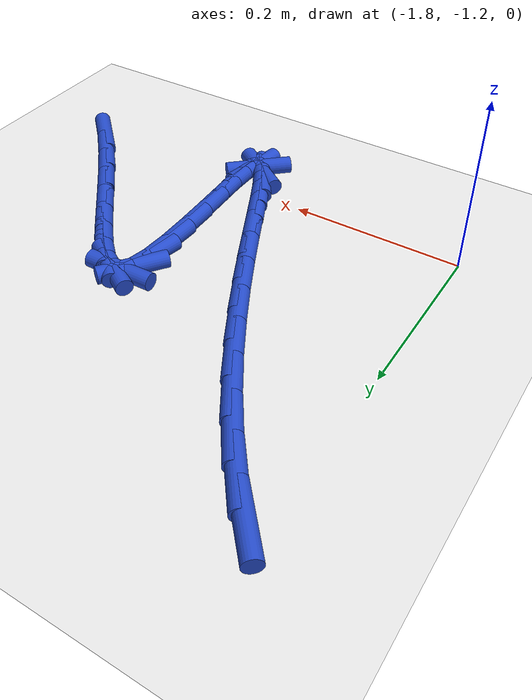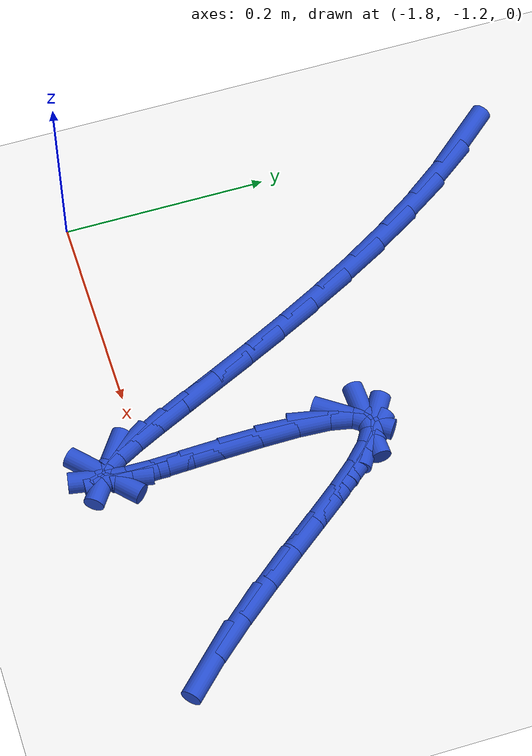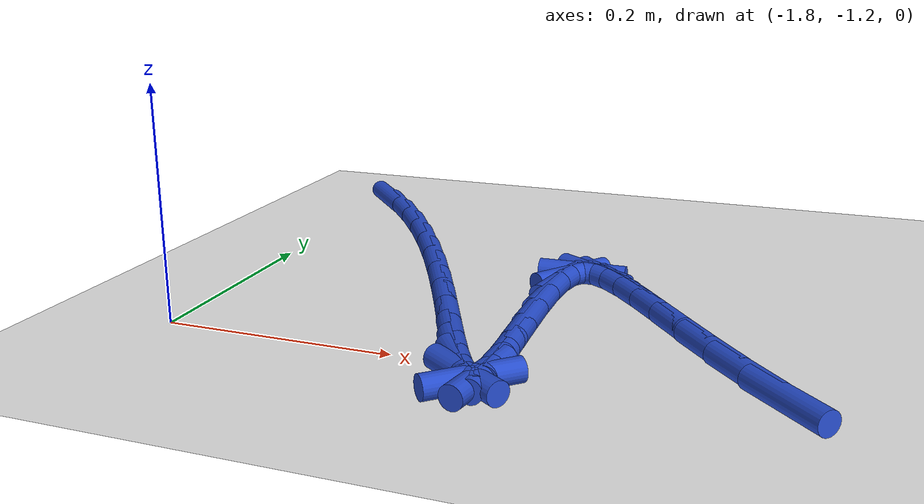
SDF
<sdf version="1.6">
 <world name="default">
  <model name="ground_plane">
   <static>1</static>
   <link name="link">
    <collision name="collision">
     <geometry><plane><normal>0 0 1</normal><size>100 100</size></plane></geometry>
     <surface><friction><ode><mu>100</mu><mu2>50</mu2></ode></friction></surface>
    </collision>
    <visual name="visual">
     <cast_shadows>0</cast_shadows>
     <geometry><plane><normal>0 0 1</normal><size>100 100</size></plane></geometry>
     <material>
      <script><uri>file://media/materials/scripts/gazebo.material</uri><name>Gazebo/WhiteGlow</name></script>
     </material>
    </visual>
   </link>
  </model>
  <model name="line">
   <link name="link_170">
    <pose>-1.781913014114439 -0.7966731855812639 0.01 0 1.57 -0.8524512088229769</pose>
    <collision name="collision">
     <geometry><cylinder><radius>0.01</radius><length>0.08</length></cylinder></geometry>
    </collision>
    <visual name="visual">
     <material>
      <script><name>Gazebo/Blue</name><uri>file://media/materials/scripts/gazebo.material</uri></script>
     </material>
     <geometry><cylinder><radius>0.01</radius><length>0.08</length></cylinder></geometry>
    </visual>
   </link>
   <link name="link_171">
    <pose>-1.7516221847958542 -0.8313251661118622 0.01 0 1.57 -0.9236586788357476</pose>
    <collision name="collision">
     <geometry><cylinder><radius>0.01</radius><length>0.08</length></cylinder></geometry>
    </collision>
    <visual name="visual">
     <material>
      <script><name>Gazebo/Blue</name><uri>file://media/materials/scripts/gazebo.material</uri></script>
     </material>
     <geometry><cylinder><radius>0.01</radius><length>0.08</length></cylinder></geometry>
    </visual>
   </link>
   <link name="link_172">
    <pose>-1.723006487294618 -0.8691917615972934 0.01 0 1.57 -0.9803498019139167</pose>
    <collision name="collision">
     <geometry><cylinder><radius>0.01</radius><length>0.08</length></cylinder></geometry>
    </collision>
    <visual name="visual">
     <material>
      <script><name>Gazebo/Blue</name><uri>file://media/materials/scripts/gazebo.material</uri></script>
     </material>
     <geometry><cylinder><radius>0.01</radius><length>0.08</length></cylinder></geometry>
    </visual>
   </link>
   <link name="link_173">
    <pose>-1.6960913079768782 -0.9093515305946142 0.01 0 1.57 -1.0256037351587777</pose>
    <collision name="collision">
     <geometry><cylinder><radius>0.01</radius><length>0.08</length></cylinder></geometry>
    </collision>
    <visual name="visual">
     <material>
      <script><name>Gazebo/Blue</name><uri>file://media/materials/scripts/gazebo.material</uri></script>
     </material>
     <geometry><cylinder><radius>0.01</radius><length>0.08</length></cylinder></geometry>
    </visual>
   </link>
   <link name="link_174">
    <pose>-1.6709020332087783 -0.9508830316608852 0.01 0 1.57 -1.0616112762057213</pose>
    <collision name="collision">
     <geometry><cylinder><radius>0.01</radius><length>0.08</length></cylinder></geometry>
    </collision>
    <visual name="visual">
     <material>
      <script><name>Gazebo/Blue</name><uri>file://media/materials/scripts/gazebo.material</uri></script>
     </material>
     <geometry><cylinder><radius>0.01</radius><length>0.08</length></cylinder></geometry>
    </visual>
   </link>
   <link name="link_175">
    <pose>-1.6474640493564645 -0.9928648233531627 0.01 0 1.57 -1.0898412422509518</pose>
    <collision name="collision">
     <geometry><cylinder><radius>0.01</radius><length>0.08</length></cylinder></geometry>
    </collision>
    <visual name="visual">
     <material>
      <script><name>Gazebo/Blue</name><uri>file://media/materials/scripts/gazebo.material</uri></script>
     </material>
     <geometry><cylinder><radius>0.01</radius><length>0.08</length></cylinder></geometry>
    </visual>
   </link>
   <link name="link_176">
    <pose>-1.6258027427860802 -1.0343754642285075 0.01 0 1.57 -1.1111405184909433</pose>
    <collision name="collision">
     <geometry><cylinder><radius>0.01</radius><length>0.08</length></cylinder></geometry>
    </collision>
    <visual name="visual">
     <material>
      <script><name>Gazebo/Blue</name><uri>file://media/materials/scripts/gazebo.material</uri></script>
     </material>
     <geometry><cylinder><radius>0.01</radius><length>0.08</length></cylinder></geometry>
    </visual>
   </link>
   <link name="link_177">
    <pose>-1.605943499863772 -1.0744935128439754 0.01 0 1.57 -1.1257329982197373</pose>
    <collision name="collision">
     <geometry><cylinder><radius>0.01</radius><length>0.08</length></cylinder></geometry>
    </collision>
    <visual name="visual">
     <material>
      <script><name>Gazebo/Blue</name><uri>file://media/materials/scripts/gazebo.material</uri></script>
     </material>
     <geometry><cylinder><radius>0.01</radius><length>0.08</length></cylinder></geometry>
    </visual>
   </link>
   <link name="link_178">
    <pose>-1.587911706955684 -1.1122975277566278 0.01 0 1.57 -1.1330539554013317</pose>
    <collision name="collision">
     <geometry><cylinder><radius>0.01</radius><length>0.08</length></cylinder></geometry>
    </collision>
    <visual name="visual">
     <material>
      <script><name>Gazebo/Blue</name><uri>file://media/materials/scripts/gazebo.material</uri></script>
     </material>
     <geometry><cylinder><radius>0.01</radius><length>0.08</length></cylinder></geometry>
    </visual>
   </link>
   <link name="link_179">
    <pose>-1.571732750427962 -1.1468660675235203 0.01 0 1.57 -1.1312396327178915</pose>
    <collision name="collision">
     <geometry><cylinder><radius>0.01</radius><length>0.08</length></cylinder></geometry>
    </collision>
    <visual name="visual">
     <material>
      <script><name>Gazebo/Blue</name><uri>file://media/materials/scripts/gazebo.material</uri></script>
     </material>
     <geometry><cylinder><radius>0.01</radius><length>0.08</length></cylinder></geometry>
    </visual>
   </link>
   <link name="link_180">
    <pose>-1.5574320166467501 -1.1772776907017142 0.01 0 1.57 -1.115695680138206</pose>
    <collision name="collision">
     <geometry><cylinder><radius>0.01</radius><length>0.08</length></cylinder></geometry>
    </collision>
    <visual name="visual">
     <material>
      <script><name>Gazebo/Blue</name><uri>file://media/materials/scripts/gazebo.material</uri></script>
     </material>
     <geometry><cylinder><radius>0.01</radius><length>0.08</length></cylinder></geometry>
    </visual>
   </link>
   <link name="link_181">
    <pose>-1.5450348919781944 -1.2026109558482656 0.01 0 1.57 -1.0745401373573582</pose>
    <collision name="collision">
     <geometry><cylinder><radius>0.01</radius><length>0.08</length></cylinder></geometry>
    </collision>
    <visual name="visual">
     <material>
      <script><name>Gazebo/Blue</name><uri>file://media/materials/scripts/gazebo.material</uri></script>
     </material>
     <geometry><cylinder><radius>0.01</radius><length>0.08</length></cylinder></geometry>
    </visual>
   </link>
   <link name="link_182">
    <pose>-1.5345667627884394 -1.2219444215202342 0.01 0 1.57 -0.9695851759933373</pose>
    <collision name="collision">
     <geometry><cylinder><radius>0.01</radius><length>0.08</length></cylinder></geometry>
    </collision>
    <visual name="visual">
     <material>
      <script><name>Gazebo/Blue</name><uri>file://media/materials/scripts/gazebo.material</uri></script>
     </material>
     <geometry><cylinder><radius>0.01</radius><length>0.08</length></cylinder></geometry>
    </visual>
   </link>
   <link name="link_183">
    <pose>-1.5260530154436296 -1.234356646274679 0.01 0 1.57 -0.6102900095859948</pose>
    <collision name="collision">
     <geometry><cylinder><radius>0.01</radius><length>0.08</length></cylinder></geometry>
    </collision>
    <visual name="visual">
     <material>
      <script><name>Gazebo/Blue</name><uri>file://media/materials/scripts/gazebo.material</uri></script>
     </material>
     <geometry><cylinder><radius>0.01</radius><length>0.08</length></cylinder></geometry>
    </visual>
   </link>
   <link name="link_184">
    <pose>-1.519519036309911 -1.2389261886686571 0.01 0 1.57 0.7471012268705861</pose>
    <collision name="collision">
     <geometry><cylinder><radius>0.01</radius><length>0.08</length></cylinder></geometry>
    </collision>
    <visual name="visual">
     <material>
      <script><name>Gazebo/Blue</name><uri>file://media/materials/scripts/gazebo.material</uri></script>
     </material>
     <geometry><cylinder><radius>0.01</radius><length>0.08</length></cylinder></geometry>
    </visual>
   </link>
   <link name="link_185">
    <pose>-1.5149902117534277 -1.2347316072592278 0.01 0 1.57 1.3927133527336624</pose>
    <collision name="collision">
     <geometry><cylinder><radius>0.01</radius><length>0.08</length></cylinder></geometry>
    </collision>
    <visual name="visual">
     <material>
      <script><name>Gazebo/Blue</name><uri>file://media/materials/scripts/gazebo.material</uri></script>
     </material>
     <geometry><cylinder><radius>0.01</radius><length>0.08</length></cylinder></geometry>
    </visual>
   </link>
   <link name="link_186">
    <pose>-1.5124919281403262 -1.22085146060345 0.01 0 1.57 1.5495981444070919</pose>
    <collision name="collision">
     <geometry><cylinder><radius>0.01</radius><length>0.08</length></cylinder></geometry>
    </collision>
    <visual name="visual">
     <material>
      <script><name>Gazebo/Blue</name><uri>file://media/materials/scripts/gazebo.material</uri></script>
     </material>
     <geometry><cylinder><radius>0.01</radius><length>0.08</length></cylinder></geometry>
    </visual>
   </link>
   <link name="link_187">
    <pose>-1.511980187634857 -1.1967143038695969 0.01 0 1.57 -1.543039912863692</pose>
    <collision name="collision">
     <geometry><cylinder><radius>0.01</radius><length>0.08</length></cylinder></geometry>
    </collision>
    <visual name="visual">
     <material>
      <script><name>Gazebo/Blue</name><uri>file://media/materials/scripts/gazebo.material</uri></script>
     </material>
     <geometry><cylinder><radius>0.01</radius><length>0.08</length></cylinder></geometry>
    </visual>
   </link>
   <link name="link_188">
    <pose>-1.512876037337288 -1.164447180562476 0.01 0 1.57 -1.530948536424401</pose>
    <collision name="collision">
     <geometry><cylinder><radius>0.01</radius><length>0.08</length></cylinder></geometry>
    </collision>
    <visual name="visual">
     <material>
      <script><name>Gazebo/Blue</name><uri>file://media/materials/scripts/gazebo.material</uri></script>
     </material>
     <geometry><cylinder><radius>0.01</radius><length>0.08</length></cylinder></geometry>
    </visual>
   </link>
   <link name="link_189">
    <pose>-1.514351800489268 -1.127431778691974 0.01 0 1.57 -1.5388431630351402</pose>
    <collision name="collision">
     <geometry><cylinder><radius>0.01</radius><length>0.08</length></cylinder></geometry>
    </collision>
    <visual name="visual">
     <material>
      <script><name>Gazebo/Blue</name><uri>file://media/materials/scripts/gazebo.material</uri></script>
     </material>
     <geometry><cylinder><radius>0.01</radius><length>0.08</length></cylinder></geometry>
    </visual>
   </link>
   <link name="link_190">
    <pose>-1.5155784218884452 -1.0890567395904414 0.01 0 1.57 -1.5667127006448083</pose>
    <collision name="collision">
     <geometry><cylinder><radius>0.01</radius><length>0.08</length></cylinder></geometry>
    </collision>
    <visual name="visual">
     <material>
      <script><name>Gazebo/Blue</name><uri>file://media/materials/scripts/gazebo.material</uri></script>
     </material>
     <geometry><cylinder><radius>0.01</radius><length>0.08</length></cylinder></geometry>
    </visual>
   </link>
   <link name="link_191">
    <pose>-1.5157268463324671 -1.052710704590224 0.01 0 1.57 1.5139897672777811</pose>
    <collision name="collision">
     <geometry><cylinder><radius>0.01</radius><length>0.08</length></cylinder></geometry>
    </collision>
    <visual name="visual">
     <material>
      <script><name>Gazebo/Blue</name><uri>file://media/materials/scripts/gazebo.material</uri></script>
     </material>
     <geometry><cylinder><radius>0.01</radius><length>0.08</length></cylinder></geometry>
    </visual>
   </link>
   <link name="link_192">
    <pose>-1.5139680186189821 -1.0217823150236724 0.01 0 1.57 1.3703321514002171</pose>
    <collision name="collision">
     <geometry><cylinder><radius>0.01</radius><length>0.08</length></cylinder></geometry>
    </collision>
    <visual name="visual">
     <material>
      <script><name>Gazebo/Blue</name><uri>file://media/materials/scripts/gazebo.material</uri></script>
     </material>
     <geometry><cylinder><radius>0.01</radius><length>0.08</length></cylinder></geometry>
    </visual>
   </link>
   <link name="link_193">
    <pose>-1.5094729203084911 -0.9996600420619352 0.01 0 1.57 0.9451374158483162</pose>
    <collision name="collision">
     <geometry><cylinder><radius>0.01</radius><length>0.08</length></cylinder></geometry>
    </collision>
    <visual name="visual">
     <material>
      <script><name>Gazebo/Blue</name><uri>file://media/materials/scripts/gazebo.material</uri></script>
     </material>
     <geometry><cylinder><radius>0.01</radius><length>0.08</length></cylinder></geometry>
    </visual>
   </link>
   <link name="link_194">
    <pose>-1.5016168934777574 -0.9887864501357594 0.01 0 1.57 0.031049589503099263</pose>
    <collision name="collision">
     <geometry><cylinder><radius>0.01</radius><length>0.08</length></cylinder></geometry>
    </collision>
    <visual name="visual">
     <material>
      <script><name>Gazebo/Blue</name><uri>file://media/materials/scripts/gazebo.material</uri></script>
     </material>
     <geometry><cylinder><radius>0.01</radius><length>0.08</length></cylinder></geometry>
    </visual>
   </link>
   <link name="link_195">
    <pose>-1.4904589002617317 -0.9884398876485895 0.01 0 1.57 -0.5528575693993123</pose>
    <collision name="collision">
     <geometry><cylinder><radius>0.01</radius><length>0.08</length></cylinder></geometry>
    </collision>
    <visual name="visual">
     <material>
      <script><name>Gazebo/Blue</name><uri>file://media/materials/scripts/gazebo.material</uri></script>
     </material>
     <geometry><cylinder><radius>0.01</radius><length>0.08</length></cylinder></geometry>
    </visual>
   </link>
   <link name="link_196">
    <pose>-1.4762006817772375 -0.9972378336548678 0.01 0 1.57 -0.7677004674313647</pose>
    <collision name="collision">
     <geometry><cylinder><radius>0.01</radius><length>0.08</length></cylinder></geometry>
    </collision>
    <visual name="visual">
     <material>
      <script><name>Gazebo/Blue</name><uri>file://media/materials/scripts/gazebo.material</uri></script>
     </material>
     <geometry><cylinder><radius>0.01</radius><length>0.08</length></cylinder></geometry>
    </visual>
   </link>
   <link name="link_197">
    <pose>-1.459043979141102 -1.0137977672090357 0.01 0 1.57 -0.8573873395570788</pose>
    <collision name="collision">
     <geometry><cylinder><radius>0.01</radius><length>0.08</length></cylinder></geometry>
    </collision>
    <visual name="visual">
     <material>
      <script><name>Gazebo/Blue</name><uri>file://media/materials/scripts/gazebo.material</uri></script>
     </material>
     <geometry><cylinder><radius>0.01</radius><length>0.08</length></cylinder></geometry>
    </visual>
   </link>
   <link name="link_198">
    <pose>-1.4391905334701505 -1.0367371673655368 0.01 0 1.57 -0.8960691150144675</pose>
    <collision name="collision">
     <geometry><cylinder><radius>0.01</radius><length>0.08</length></cylinder></geometry>
    </collision>
    <visual name="visual">
     <material>
      <script><name>Gazebo/Blue</name><uri>file://media/materials/scripts/gazebo.material</uri></script>
     </material>
     <geometry><cylinder><radius>0.01</radius><length>0.08</length></cylinder></geometry>
    </visual>
   </link>
   <link name="link_199">
    <pose>-1.4168420858812085 -1.0646735131788119 0.01 0 1.57 -0.9077376407483715</pose>
    <collision name="collision">
     <geometry><cylinder><radius>0.01</radius><length>0.08</length></cylinder></geometry>
    </collision>
    <visual name="visual">
     <material>
      <script><name>Gazebo/Blue</name><uri>file://media/materials/scripts/gazebo.material</uri></script>
     </material>
     <geometry><cylinder><radius>0.01</radius><length>0.08</length></cylinder></geometry>
    </visual>
   </link>
   <link name="link_200">
    <pose>-1.3922003774911003 -1.096224283703305 0.01 0 1.57 -0.9013646568489624</pose>
    <collision name="collision">
     <geometry><cylinder><radius>0.01</radius><length>0.08</length></cylinder></geometry>
    </collision>
    <visual name="visual">
     <material>
      <script><name>Gazebo/Blue</name><uri>file://media/materials/scripts/gazebo.material</uri></script>
     </material>
     <geometry><cylinder><radius>0.01</radius><length>0.08</length></cylinder></geometry>
    </visual>
   </link>
   <link name="link_201">
    <pose>-1.365467149416654 -1.1300069579934562 0.01 0 1.57 -0.8801110800000217</pose>
    <collision name="collision">
     <geometry><cylinder><radius>0.01</radius><length>0.08</length></cylinder></geometry>
    </collision>
    <visual name="visual">
     <material>
      <script><name>Gazebo/Blue</name><uri>file://media/materials/scripts/gazebo.material</uri></script>
     </material>
     <geometry><cylinder><radius>0.01</radius><length>0.08</length></cylinder></geometry>
    </visual>
   </link>
   <link name="link_202">
    <pose>-1.3368441427746924 -1.1646390151037098 0.01 0 1.57 -0.8441393423772843</pose>
    <collision name="collision">
     <geometry><cylinder><radius>0.01</radius><length>0.08</length></cylinder></geometry>
    </collision>
    <visual name="visual">
     <material>
      <script><name>Gazebo/Blue</name><uri>file://media/materials/scripts/gazebo.material</uri></script>
     </material>
     <geometry><cylinder><radius>0.01</radius><length>0.08</length></cylinder></geometry>
    </visual>
   </link>
   <link name="link_203">
    <pose>-1.3065330986820434 -1.1987379340885067 0.01 0 1.57 -0.7914299105995024</pose>
    <collision name="collision">
     <geometry><cylinder><radius>0.01</radius><length>0.08</length></cylinder></geometry>
    </collision>
    <visual name="visual">
     <material>
      <script><name>Gazebo/Blue</name><uri>file://media/materials/scripts/gazebo.material</uri></script>
     </material>
     <geometry><cylinder><radius>0.01</radius><length>0.08</length></cylinder></geometry>
    </visual>
   </link>
  </model>
 </world>
</sdf>
